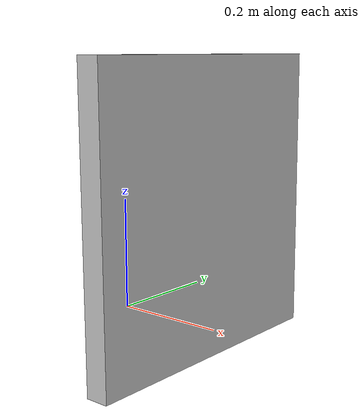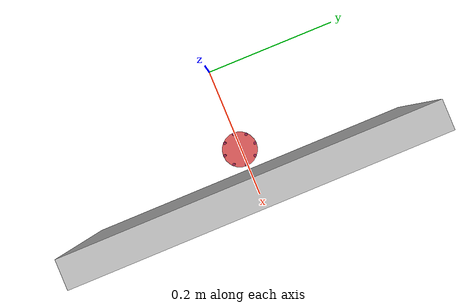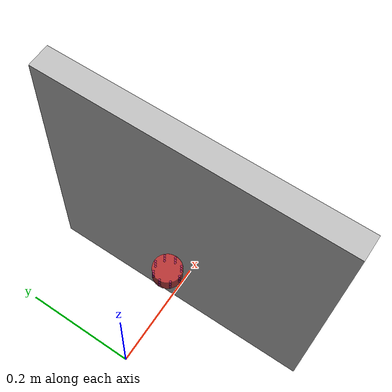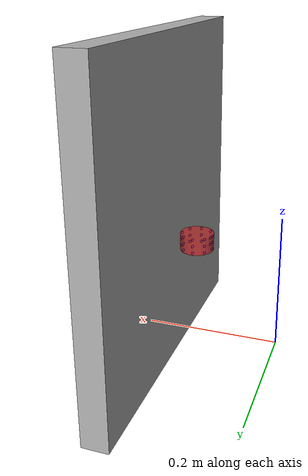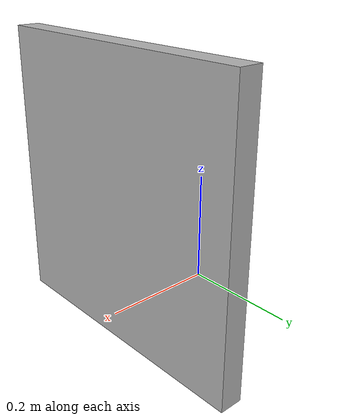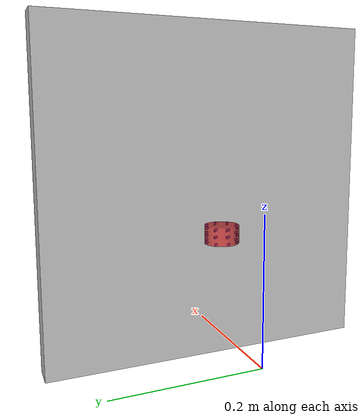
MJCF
<?xml version='1.0' encoding='utf-8'?>
<mujoco model="magnet_wall_env">
  <compiler angle="radian" />
  <option integrator="implicit" cone="elliptic" impratio="10" noslip_iterations="15" />
  <default class="main">
    <geom condim="6" />
  </default>
  <visual>
    <global offwidth="1920" offheight="1080" />
  </visual>
  <worldbody>
    <body name="wall" pos="0.18 0 0.205">
      <geom name="magnetic_wall" type="box" size="0.02 0.25 0.25" rgba="0.7 0.7 0.7 1" />
    </body>
    <body name="magnet_wheel" pos="0.125 0 0.15" euler="0 0 0.01">
      <inertial mass="0.33" pos="0 0 0" diaginertia="0.000069 0.000103 0.000069" />
      <freejoint />
      <geom name="magnet_geom" type="cylinder" size="0.025 0.013" rgba="0.8 0.2 0.2 0.8" friction="1 0.01 0.01" />
      <geom name="mag_pt0_t" type="sphere" size="0.002" pos="0.023000 0.000000 0.010500" rgba="0 0 1 1" contype="0" conaffinity="0" friction="0.1 0.1 0.1" mass="1e-6" />
      <geom name="mag_pt1_t" type="sphere" size="0.002" pos="0.016263 0.016263 0.010500" rgba="0 0 1 1" contype="0" conaffinity="0" friction="0.1 0.1 0.1" mass="1e-6" />
      <geom name="mag_pt2_t" type="sphere" size="0.002" pos="0.000000 0.023000 0.010500" rgba="0 0 1 1" contype="0" conaffinity="0" friction="0.1 0.1 0.1" mass="1e-6" />
      <geom name="mag_pt3_t" type="sphere" size="0.002" pos="-0.016263 0.016263 0.010500" rgba="0 0 1 1" contype="0" conaffinity="0" friction="0.1 0.1 0.1" mass="1e-6" />
      <geom name="mag_pt4_t" type="sphere" size="0.002" pos="-0.023000 0.000000 0.010500" rgba="0 0 1 1" contype="0" conaffinity="0" friction="0.1 0.1 0.1" mass="1e-6" />
      <geom name="mag_pt5_t" type="sphere" size="0.002" pos="-0.016263 -0.016263 0.010500" rgba="0 0 1 1" contype="0" conaffinity="0" friction="0.1 0.1 0.1" mass="1e-6" />
      <geom name="mag_pt6_t" type="sphere" size="0.002" pos="-0.000000 -0.023000 0.010500" rgba="0 0 1 1" contype="0" conaffinity="0" friction="0.1 0.1 0.1" mass="1e-6" />
      <geom name="mag_pt7_t" type="sphere" size="0.002" pos="0.016263 -0.016263 0.010500" rgba="0 0 1 1" contype="0" conaffinity="0" friction="0.1 0.1 0.1" mass="1e-6" />
      <geom name="mag_pt0_m" type="sphere" size="0.002" pos="0.023000 0.000000 0.000000" rgba="0 0 1 1" contype="0" conaffinity="0" friction="0.1 0.1 0.1" mass="1e-6" />
      <geom name="mag_pt1_m" type="sphere" size="0.002" pos="0.016263 0.016263 0.000000" rgba="0 0 1 1" contype="0" conaffinity="0" friction="0.1 0.1 0.1" mass="1e-6" />
      <geom name="mag_pt2_m" type="sphere" size="0.002" pos="0.000000 0.023000 0.000000" rgba="0 0 1 1" contype="0" conaffinity="0" friction="0.1 0.1 0.1" mass="1e-6" />
      <geom name="mag_pt3_m" type="sphere" size="0.002" pos="-0.016263 0.016263 0.000000" rgba="0 0 1 1" contype="0" conaffinity="0" friction="0.1 0.1 0.1" mass="1e-6" />
      <geom name="mag_pt4_m" type="sphere" size="0.002" pos="-0.023000 0.000000 0.000000" rgba="0 0 1 1" contype="0" conaffinity="0" friction="0.1 0.1 0.1" mass="1e-6" />
      <geom name="mag_pt5_m" type="sphere" size="0.002" pos="-0.016263 -0.016263 0.000000" rgba="0 0 1 1" contype="0" conaffinity="0" friction="0.1 0.1 0.1" mass="1e-6" />
      <geom name="mag_pt6_m" type="sphere" size="0.002" pos="-0.000000 -0.023000 0.000000" rgba="0 0 1 1" contype="0" conaffinity="0" friction="0.1 0.1 0.1" mass="1e-6" />
      <geom name="mag_pt7_m" type="sphere" size="0.002" pos="0.016263 -0.016263 0.000000" rgba="0 0 1 1" contype="0" conaffinity="0" friction="0.1 0.1 0.1" mass="1e-6" />
      <geom name="mag_pt0_b" type="sphere" size="0.002" pos="0.023000 0.000000 -0.010500" rgba="0 0 1 1" contype="0" conaffinity="0" friction="0.1 0.1 0.1" mass="1e-6" />
      <geom name="mag_pt1_b" type="sphere" size="0.002" pos="0.016263 0.016263 -0.010500" rgba="0 0 1 1" contype="0" conaffinity="0" friction="0.1 0.1 0.1" mass="1e-6" />
      <geom name="mag_pt2_b" type="sphere" size="0.002" pos="0.000000 0.023000 -0.010500" rgba="0 0 1 1" contype="0" conaffinity="0" friction="0.1 0.1 0.1" mass="1e-6" />
      <geom name="mag_pt3_b" type="sphere" size="0.002" pos="-0.016263 0.016263 -0.010500" rgba="0 0 1 1" contype="0" conaffinity="0" friction="0.1 0.1 0.1" mass="1e-6" />
      <geom name="mag_pt4_b" type="sphere" size="0.002" pos="-0.023000 0.000000 -0.010500" rgba="0 0 1 1" contype="0" conaffinity="0" friction="0.1 0.1 0.1" mass="1e-6" />
      <geom name="mag_pt5_b" type="sphere" size="0.002" pos="-0.016263 -0.016263 -0.010500" rgba="0 0 1 1" contype="0" conaffinity="0" friction="0.1 0.1 0.1" mass="1e-6" />
      <geom name="mag_pt6_b" type="sphere" size="0.002" pos="-0.000000 -0.023000 -0.010500" rgba="0 0 1 1" contype="0" conaffinity="0" friction="0.1 0.1 0.1" mass="1e-6" />
      <geom name="mag_pt7_b" type="sphere" size="0.002" pos="0.016263 -0.016263 -0.010500" rgba="0 0 1 1" contype="0" conaffinity="0" friction="0.1 0.1 0.1" mass="1e-6" />
    </body>
  </worldbody>
</mujoco>
